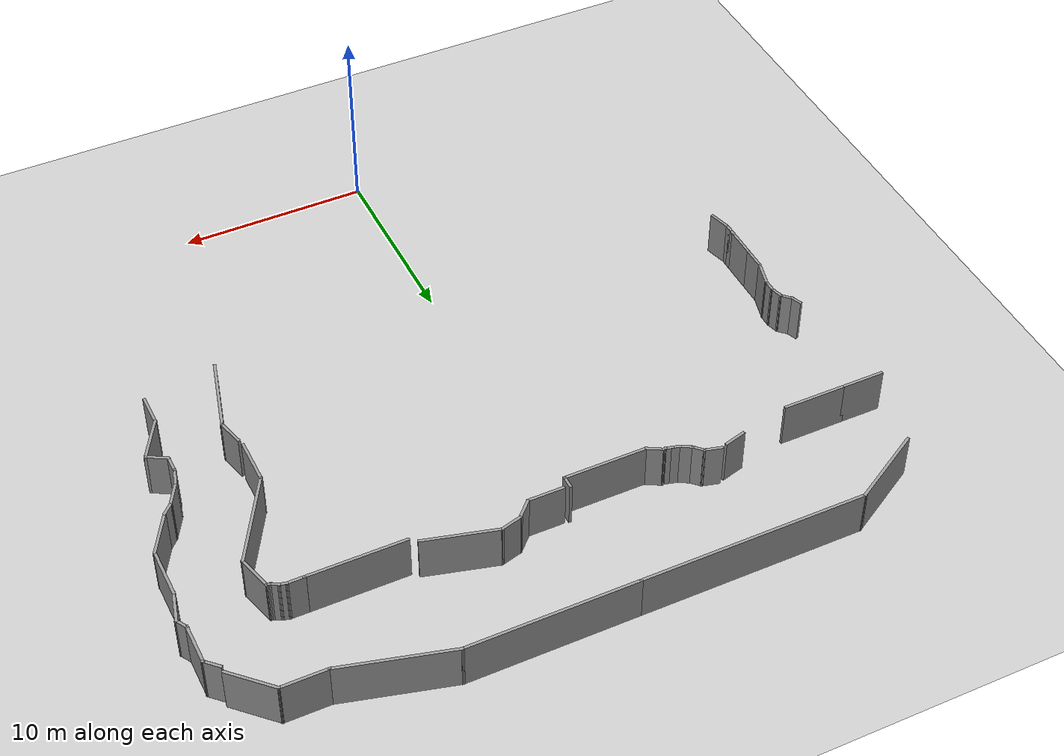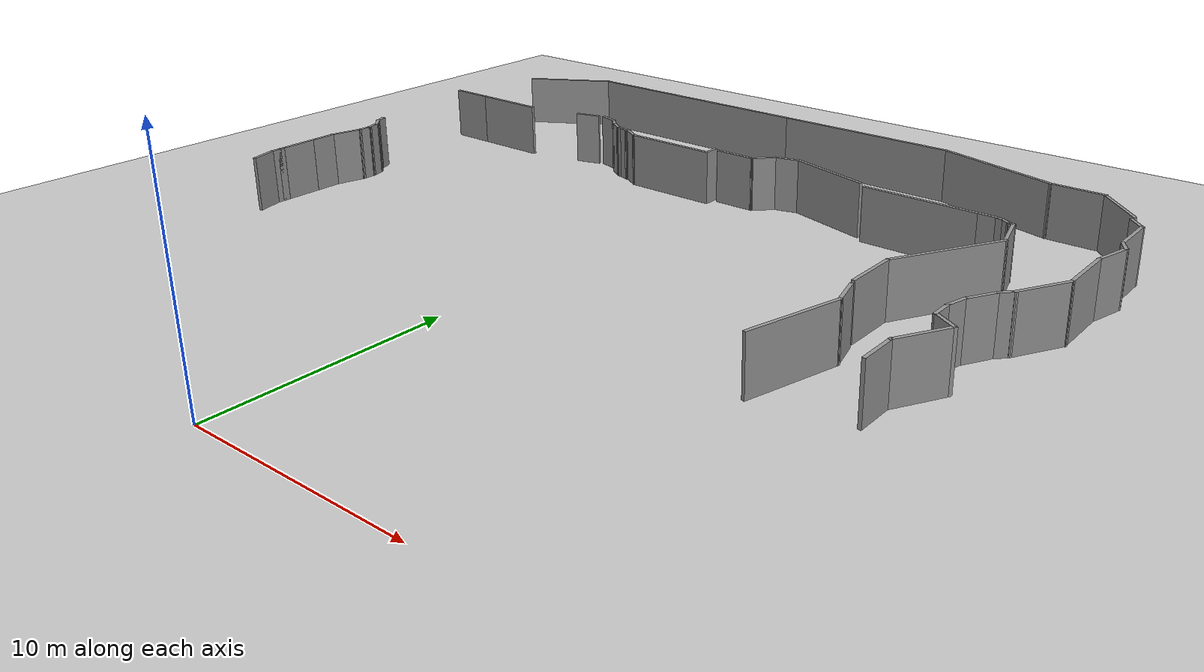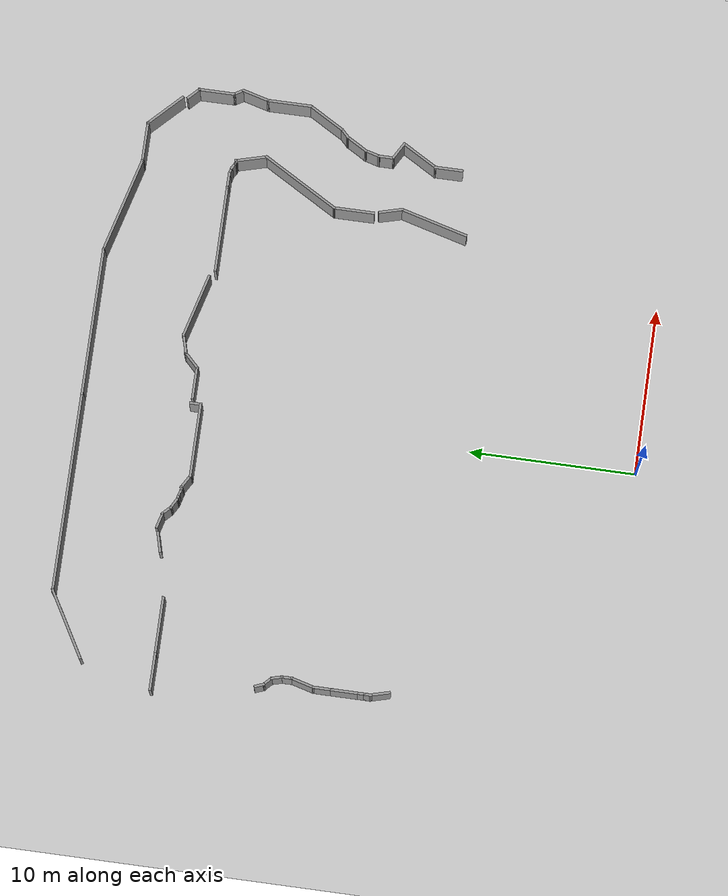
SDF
<sdf version="1.7">
 <world name="default">
  <model name="ground_plane">
   <static>1</static>
   <link name="link">
    <collision name="collision">
     <geometry><plane><normal>0 0 1</normal><size>100 100</size></plane></geometry>
     <surface><friction><ode><mu>100</mu><mu2>50</mu2></ode></friction></surface>
    </collision>
    <visual name="visual">
     <cast_shadows>0</cast_shadows>
     <geometry><plane><normal>0 0 1</normal><size>100 100</size></plane></geometry>
     <material>
      <script><uri>file://media/materials/scripts/gazebo.material</uri><name>Gazebo/Grey</name></script>
     </material>
    </visual>
   </link>
  </model>
  <model name="Untitled">
   <pose>-1.78886 14.7141 0 0 -0 0</pose>
   <link name="Wall_134">
    <collision name="Wall_134_Collision">
     <geometry><box><size>1.25 0.15 2.5</size></box></geometry>
     <pose>0 0 1.25 0 -0 0</pose>
    </collision>
    <visual name="Wall_134_Visual">
     <pose>0 0 1.25 0 -0 0</pose>
     <geometry><box><size>1.25 0.15 2.5</size></box></geometry>
     <material>
      <script><uri>file://media/materials/scripts/gazebo.material</uri><name>Gazebo/Grey</name></script>
      <ambient>1 1 1 1</ambient>
     </material>
     <meta><layer>0</layer></meta>
    </visual>
    <pose>-6.41412 12.7149 0 0 -0 -2.87979</pose>
   </link>
   <link name="Wall_150">
    <collision name="Wall_150_Collision">
     <geometry><box><size>1.75 0.15 2.5</size></box></geometry>
     <pose>0 0 1.25 0 -0 0</pose>
    </collision>
    <visual name="Wall_150_Visual">
     <pose>0 0 1.25 0 -0 0</pose>
     <geometry><box><size>1.75 0.15 2.5</size></box></geometry>
     <material>
      <script><uri>file://media/materials/scripts/gazebo.material</uri><name>Gazebo/Grey</name></script>
      <ambient>1 1 1 1</ambient>
     </material>
     <meta><layer>0</layer></meta>
    </visual>
    <pose>18.2425 -1.23109 0 0 -0 1.5708</pose>
   </link>
   <link name="Wall_151">
    <collision name="Wall_151_Collision">
     <geometry><box><size>2.5 0.15 2.5</size></box></geometry>
     <pose>0 0 1.25 0 -0 0</pose>
    </collision>
    <visual name="Wall_151_Visual">
     <pose>0 0 1.25 0 -0 0</pose>
     <geometry><box><size>2.5 0.15 2.5</size></box></geometry>
     <material>
      <script><uri>file://media/materials/scripts/gazebo.material</uri><name>Gazebo/Grey</name></script>
      <ambient>1 1 1 1</ambient>
     </material>
     <meta><layer>0</layer></meta>
    </visual>
    <pose>18.83 0.586485 0 0 -0 1.0472</pose>
   </link>
   <link name="Wall_152">
    <collision name="Wall_152_Collision">
     <geometry><box><size>1.25 0.15 2.5</size></box></geometry>
     <pose>0 0 1.25 0 -0 0</pose>
    </collision>
    <visual name="Wall_152_Visual">
     <pose>0 0 1.25 0 -0 0</pose>
     <geometry><box><size>1.25 0.15 2.5</size></box></geometry>
     <material>
      <script><uri>file://media/materials/scripts/gazebo.material</uri><name>Gazebo/Grey</name></script>
      <ambient>1 1 1 1</ambient>
     </material>
     <meta><layer>0</layer></meta>
    </visual>
    <pose>18.9412 1.87906 0 0 -0 2.61799</pose>
   </link>
   <link name="Wall_153">
    <collision name="Wall_153_Collision">
     <geometry><box><size>1 0.15 2.5</size></box></geometry>
     <pose>0 0 1.25 0 -0 0</pose>
    </collision>
    <visual name="Wall_153_Visual">
     <pose>0 0 1.25 0 -0 0</pose>
     <geometry><box><size>1 0.15 2.5</size></box></geometry>
     <material>
      <script><uri>file://media/materials/scripts/gazebo.material</uri><name>Gazebo/Grey</name></script>
      <ambient>1 1 1 1</ambient>
     </material>
     <meta><layer>0</layer></meta>
    </visual>
    <pose>18.4649 2.57906 0 0 -0 1.5708</pose>
   </link>
   <link name="Wall_154">
    <collision name="Wall_154_Collision">
     <geometry><box><size>1 0.15 2.5</size></box></geometry>
     <pose>0 0 1.25 0 -0 0</pose>
    </collision>
    <visual name="Wall_154_Visual">
     <pose>0 0 1.25 0 -0 0</pose>
     <geometry><box><size>1 0.15 2.5</size></box></geometry>
     <material>
      <script><uri>file://media/materials/scripts/gazebo.material</uri><name>Gazebo/Grey</name></script>
      <ambient>1 1 1 1</ambient>
     </material>
     <meta><layer>0</layer></meta>
    </visual>
    <pose>18.5749 3.41458 0 0 -0 1.309</pose>
   </link>
   <link name="Wall_155">
    <collision name="Wall_155_Collision">
     <geometry><box><size>1.5 0.15 2.5</size></box></geometry>
     <pose>0 0 1.25 0 -0 0</pose>
    </collision>
    <visual name="Wall_155_Visual">
     <pose>0 0 1.25 0 -0 0</pose>
     <geometry><box><size>1.5 0.15 2.5</size></box></geometry>
     <material>
      <script><uri>file://media/materials/scripts/gazebo.material</uri><name>Gazebo/Grey</name></script>
      <ambient>1 1 1 1</ambient>
     </material>
     <meta><layer>0</layer></meta>
    </visual>
    <pose>19.0224 4.40967 0 0 -0 1.0472</pose>
   </link>
   <link name="Wall_156">
    <collision name="Wall_156_Collision">
     <geometry><box><size>0.75 0.15 2.5</size></box></geometry>
     <pose>0 0 1.25 0 -0 0</pose>
    </collision>
    <visual name="Wall_156_Visual">
     <pose>0 0 1.25 0 -0 0</pose>
     <geometry><box><size>0.75 0.15 2.5</size></box></geometry>
     <material>
      <script><uri>file://media/materials/scripts/gazebo.material</uri><name>Gazebo/Grey</name></script>
      <ambient>1 1 1 1</ambient>
     </material>
     <meta><layer>0</layer></meta>
    </visual>
    <pose>19.572 5.20637 0 0 -0 0.785398</pose>
   </link>
   <link name="Wall_157">
    <collision name="Wall_157_Collision">
     <geometry><box><size>2.5 0.15 2.5</size></box></geometry>
     <pose>0 0 1.25 0 -0 0</pose>
    </collision>
    <visual name="Wall_157_Visual">
     <pose>0 0 1.25 0 -0 0</pose>
     <geometry><box><size>2.5 0.15 2.5</size></box></geometry>
     <material>
      <script><uri>file://media/materials/scripts/gazebo.material</uri><name>Gazebo/Grey</name></script>
      <ambient>1 1 1 1</ambient>
     </material>
     <meta><layer>0</layer></meta>
    </visual>
    <pose>20.3717 6.43608 0 0 -0 1.0472</pose>
   </link>
   <link name="Wall_158">
    <collision name="Wall_158_Collision">
     <geometry><box><size>2.75 0.15 2.5</size></box></geometry>
     <pose>0 0 1.25 0 -0 0</pose>
    </collision>
    <visual name="Wall_158_Visual">
     <pose>0 0 1.25 0 -0 0</pose>
     <geometry><box><size>2.75 0.15 2.5</size></box></geometry>
     <material>
      <script><uri>file://media/materials/scripts/gazebo.material</uri><name>Gazebo/Grey</name></script>
      <ambient>1 1 1 1</ambient>
     </material>
     <meta><layer>0</layer></meta>
    </visual>
    <pose>20.9592 8.75366 0 0 -0 1.5708</pose>
   </link>
   <link name="Wall_159">
    <collision name="Wall_159_Collision">
     <geometry><box><size>1.75 0.15 2.5</size></box></geometry>
     <pose>0 0 1.25 0 -0 0</pose>
    </collision>
    <visual name="Wall_159_Visual">
     <pose>0 0 1.25 0 -0 0</pose>
     <geometry><box><size>1.75 0.15 2.5</size></box></geometry>
     <material>
      <script><uri>file://media/materials/scripts/gazebo.material</uri><name>Gazebo/Grey</name></script>
      <ambient>1 1 1 1</ambient>
     </material>
     <meta><layer>0</layer></meta>
    </visual>
    <pose>21.1662 10.8264 0 0 -0 1.309</pose>
   </link>
   <link name="Wall_160">
    <collision name="Wall_160_Collision">
     <geometry><box><size>0.75 0.15 2.5</size></box></geometry>
     <pose>0 0 1.25 0 -0 0</pose>
    </collision>
    <visual name="Wall_160_Visual">
     <pose>0 0 1.25 0 -0 0</pose>
     <geometry><box><size>0.75 0.15 2.5</size></box></geometry>
     <material>
      <script><uri>file://media/materials/scripts/gazebo.material</uri><name>Gazebo/Grey</name></script>
      <ambient>1 1 1 1</ambient>
     </material>
     <meta><layer>0</layer></meta>
    </visual>
    <pose>21.2233 11.859 0 0 -0 2.0944</pose>
   </link>
   <link name="Wall_161">
    <collision name="Wall_161_Collision">
     <geometry><box><size>2.25 0.15 2.5</size></box></geometry>
     <pose>0 0 1.25 0 -0 0</pose>
    </collision>
    <visual name="Wall_161_Visual">
     <pose>0 0 1.25 0 -0 0</pose>
     <geometry><box><size>2.25 0.15 2.5</size></box></geometry>
     <material>
      <script><uri>file://media/materials/scripts/gazebo.material</uri><name>Gazebo/Grey</name></script>
      <ambient>1 1 1 1</ambient>
     </material>
     <meta><layer>0</layer></meta>
    </visual>
    <pose>21.0733 13.1688 0 0 -0 1.5708</pose>
   </link>
   <link name="Wall_162">
    <collision name="Wall_162_Collision">
     <geometry><box><size>1 0.15 2.5</size></box></geometry>
     <pose>0 0 1.25 0 -0 0</pose>
    </collision>
    <visual name="Wall_162_Visual">
     <pose>0 0 1.25 0 -0 0</pose>
     <geometry><box><size>1 0.15 2.5</size></box></geometry>
     <material>
      <script><uri>file://media/materials/scripts/gazebo.material</uri><name>Gazebo/Grey</name></script>
      <ambient>1 1 1 1</ambient>
     </material>
     <meta><layer>0</layer></meta>
    </visual>
    <pose>20.7727 14.5193 0 0 -0 2.35619</pose>
   </link>
   <link name="Wall_165">
    <collision name="Wall_165_Collision">
     <geometry><box><size>2.75 0.15 2.5</size></box></geometry>
     <pose>0 0 1.25 0 -0 0</pose>
    </collision>
    <visual name="Wall_165_Visual">
     <pose>0 0 1.25 0 -0 0</pose>
     <geometry><box><size>2.75 0.15 2.5</size></box></geometry>
     <material>
      <script><uri>file://media/materials/scripts/gazebo.material</uri><name>Gazebo/Grey</name></script>
      <ambient>1 1 1 1</ambient>
     </material>
     <meta><layer>0</layer></meta>
    </visual>
    <pose>19.5331 16.0665 0 0 -0 2.35619</pose>
   </link>
   <link name="Wall_166">
    <collision name="Wall_166_Collision">
     <geometry><box><size>2.5 0.15 2.5</size></box></geometry>
     <pose>0 0 1.25 0 -0 0</pose>
    </collision>
    <visual name="Wall_166_Visual">
     <pose>0 0 1.25 0 -0 0</pose>
     <geometry><box><size>2.5 0.15 2.5</size></box></geometry>
     <material>
      <script><uri>file://media/materials/scripts/gazebo.material</uri><name>Gazebo/Grey</name></script>
      <ambient>1 1 1 1</ambient>
     </material>
     <meta><layer>0</layer></meta>
    </visual>
    <pose>17.4388 16.9858 0 0 -0 3.14159</pose>
   </link>
   <link name="Wall_167">
    <collision name="Wall_167_Collision">
     <geometry><box><size>6 0.15 2.5</size></box></geometry>
     <pose>0 0 1.25 0 -0 0</pose>
    </collision>
    <visual name="Wall_167_Visual">
     <pose>0 0 1.25 0 -0 0</pose>
     <geometry><box><size>6 0.15 2.5</size></box></geometry>
     <material>
      <script><uri>file://media/materials/scripts/gazebo.material</uri><name>Gazebo/Grey</name></script>
      <ambient>1 1 1 1</ambient>
     </material>
     <meta><layer>0</layer></meta>
    </visual>
    <pose>13.4385 17.7428 0 0 -0 2.87979</pose>
   </link>
   <link name="Wall_168">
    <collision name="Wall_168_Collision">
     <geometry><box><size>9 0.15 2.5</size></box></geometry>
     <pose>0 0 1.25 0 -0 0</pose>
    </collision>
    <visual name="Wall_168_Visual">
     <pose>0 0 1.25 0 -0 0</pose>
     <geometry><box><size>9 0.15 2.5</size></box></geometry>
     <material>
      <script><uri>file://media/materials/scripts/gazebo.material</uri><name>Gazebo/Grey</name></script>
      <ambient>1 1 1 1</ambient>
     </material>
     <meta><layer>0</layer></meta>
    </visual>
    <pose>6.18816 18.4999 0 0 -0 3.14159</pose>
   </link>
   <link name="Wall_169">
    <collision name="Wall_169_Collision">
     <geometry><box><size>12 0.15 2.5</size></box></geometry>
     <pose>0 0 1.25 0 -0 0</pose>
    </collision>
    <visual name="Wall_169_Visual">
     <pose>0 0 1.25 0 -0 0</pose>
     <geometry><box><size>12 0.15 2.5</size></box></geometry>
     <material>
      <script><uri>file://media/materials/scripts/gazebo.material</uri><name>Gazebo/Grey</name></script>
      <ambient>1 1 1 1</ambient>
     </material>
     <meta><layer>0</layer></meta>
    </visual>
    <pose>-4.16184 18.4999 0 0 -0 3.14159</pose>
   </link>
   <link name="Wall_170">
    <collision name="Wall_170_Collision">
     <geometry><box><size>4.5 0.15 2.5</size></box></geometry>
     <pose>0 0 1.25 0 -0 0</pose>
    </collision>
    <visual name="Wall_170_Visual">
     <pose>0 0 1.25 0 -0 0</pose>
     <geometry><box><size>4.5 0.15 2.5</size></box></geometry>
     <material>
      <script><uri>file://media/materials/scripts/gazebo.material</uri><name>Gazebo/Grey</name></script>
      <ambient>1 1 1 1</ambient>
     </material>
     <meta><layer>0</layer></meta>
    </visual>
    <pose>-11.9704 17.4124 0 0 -0 -2.61799</pose>
   </link>
   <link name="Wall_228">
    <collision name="Wall_228_Collision">
     <geometry><box><size>1.25 0.15 2.5</size></box></geometry>
     <pose>0 0 1.25 0 -0 0</pose>
    </collision>
    <visual name="Wall_228_Visual">
     <pose>0 0 1.25 0 -0 0</pose>
     <geometry><box><size>1.25 0.15 2.5</size></box></geometry>
     <material>
      <script><uri>file://media/materials/scripts/gazebo.material</uri><name>Gazebo/Grey</name></script>
      <ambient>1 1 1 1</ambient>
     </material>
     <meta><layer>0</layer></meta>
    </visual>
    <pose>-13.5789 -1.40371 0 0 -0 1.8326</pose>
   </link>
   <link name="Wall_229">
    <collision name="Wall_229_Collision">
     <geometry><box><size>0.5 0.15 2.5</size></box></geometry>
     <pose>0 0 1.25 0 -0 0</pose>
    </collision>
    <visual name="Wall_229_Visual">
     <pose>0 0 1.25 0 -0 0</pose>
     <geometry><box><size>0.5 0.15 2.5</size></box></geometry>
     <material>
      <script><uri>file://media/materials/scripts/gazebo.material</uri><name>Gazebo/Grey</name></script>
      <ambient>1 1 1 1</ambient>
     </material>
     <meta><layer>0</layer></meta>
    </visual>
    <pose>-13.7212 -0.69745 0 0 -0 1.5708</pose>
   </link>
   <link name="Wall_230">
    <collision name="Wall_230_Collision">
     <geometry><box><size>0.5 0.15 2.5</size></box></geometry>
     <pose>0 0 1.25 0 -0 0</pose>
    </collision>
    <visual name="Wall_230_Visual">
     <pose>0 0 1.25 0 -0 0</pose>
     <geometry><box><size>0.5 0.15 2.5</size></box></geometry>
     <material>
      <script><uri>file://media/materials/scripts/gazebo.material</uri><name>Gazebo/Grey</name></script>
      <ambient>1 1 1 1</ambient>
     </material>
     <meta><layer>0</layer></meta>
    </visual>
    <pose>-13.7212 -0.347449 0 0 -0 1.5708</pose>
   </link>
   <link name="Wall_231">
    <collision name="Wall_231_Collision">
     <geometry><box><size>1.75 0.15 2.5</size></box></geometry>
     <pose>0 0 1.25 0 -0 0</pose>
    </collision>
    <visual name="Wall_231_Visual">
     <pose>0 0 1.25 0 -0 0</pose>
     <geometry><box><size>1.75 0.15 2.5</size></box></geometry>
     <material>
      <script><uri>file://media/materials/scripts/gazebo.material</uri><name>Gazebo/Grey</name></script>
      <ambient>1 1 1 1</ambient>
     </material>
     <meta><layer>0</layer></meta>
    </visual>
    <pose>-13.7212 0.62755 0 0 -0 1.5708</pose>
   </link>
   <link name="Wall_232">
    <collision name="Wall_232_Collision">
     <geometry><box><size>1.25 0.15 2.5</size></box></geometry>
     <pose>0 0 1.25 0 -0 0</pose>
    </collision>
    <visual name="Wall_232_Visual">
     <pose>0 0 1.25 0 -0 0</pose>
     <geometry><box><size>1.25 0.15 2.5</size></box></geometry>
     <material>
      <script><uri>file://media/materials/scripts/gazebo.material</uri><name>Gazebo/Grey</name></script>
      <ambient>1 1 1 1</ambient>
     </material>
     <meta><layer>0</layer></meta>
    </visual>
    <pose>-13.7212 1.97755 0 0 -0 1.5708</pose>
   </link>
   <link name="Wall_233">
    <collision name="Wall_233_Collision">
     <geometry><box><size>1.5 0.15 2.5</size></box></geometry>
     <pose>0 0 1.25 0 -0 0</pose>
    </collision>
    <visual name="Wall_233_Visual">
     <pose>0 0 1.25 0 -0 0</pose>
     <geometry><box><size>1.5 0.15 2.5</size></box></geometry>
     <material>
      <script><uri>file://media/materials/scripts/gazebo.material</uri><name>Gazebo/Grey</name></script>
      <ambient>1 1 1 1</ambient>
     </material>
     <meta><layer>0</layer></meta>
    </visual>
    <pose>-13.5465 3.17955 0 0 -0 1.309</pose>
   </link>
   <link name="Wall_234">
    <collision name="Wall_234_Collision">
     <geometry><box><size>0.75 0.15 2.5</size></box></geometry>
     <pose>0 0 1.25 0 -0 0</pose>
    </collision>
    <visual name="Wall_234_Visual">
     <pose>0 0 1.25 0 -0 0</pose>
     <geometry><box><size>0.75 0.15 2.5</size></box></geometry>
     <material>
      <script><uri>file://media/materials/scripts/gazebo.material</uri><name>Gazebo/Grey</name></script>
      <ambient>1 1 1 1</ambient>
     </material>
     <meta><layer>0</layer></meta>
    </visual>
    <pose>-13.3718 4.13155 0 0 -0 1.5708</pose>
   </link>
   <link name="Wall_235">
    <collision name="Wall_235_Collision">
     <geometry><box><size>0.75 0.15 2.5</size></box></geometry>
     <pose>0 0 1.25 0 -0 0</pose>
    </collision>
    <visual name="Wall_235_Visual">
     <pose>0 0 1.25 0 -0 0</pose>
     <geometry><box><size>0.75 0.15 2.5</size></box></geometry>
     <material>
      <script><uri>file://media/materials/scripts/gazebo.material</uri><name>Gazebo/Grey</name></script>
      <ambient>1 1 1 1</ambient>
     </material>
     <meta><layer>0</layer></meta>
    </visual>
    <pose>-13.4495 4.72133 0 0 -0 1.8326</pose>
   </link>
   <link name="Wall_236">
    <collision name="Wall_236_Collision">
     <geometry><box><size>0.75 0.15 2.5</size></box></geometry>
     <pose>0 0 1.25 0 -0 0</pose>
    </collision>
    <visual name="Wall_236_Visual">
     <pose>0 0 1.25 0 -0 0</pose>
     <geometry><box><size>0.75 0.15 2.5</size></box></geometry>
     <material>
      <script><uri>file://media/materials/scripts/gazebo.material</uri><name>Gazebo/Grey</name></script>
      <ambient>1 1 1 1</ambient>
     </material>
     <meta><layer>0</layer></meta>
    </visual>
    <pose>-13.7393 5.22324 0 0 -0 2.35619</pose>
   </link>
   <link name="Wall_246">
    <collision name="Wall_246_Collision">
     <geometry><box><size>2.25 0.15 2.5</size></box></geometry>
     <pose>0 0 1.25 0 -0 0</pose>
    </collision>
    <visual name="Wall_246_Visual">
     <pose>0 0 1.25 0 -0 0</pose>
     <geometry><box><size>2.25 0.15 2.5</size></box></geometry>
     <material>
      <script><uri>file://media/materials/scripts/gazebo.material</uri><name>Gazebo/Grey</name></script>
      <ambient>1 1 1 1</ambient>
     </material>
     <meta><layer>0</layer></meta>
    </visual>
    <pose>-14.0739 11.984 0 0 -0 0</pose>
   </link>
   <link name="Wall_247">
    <collision name="Wall_247_Collision">
     <geometry><box><size>3.5 0.15 2.5</size></box></geometry>
     <pose>0 0 1.25 0 -0 0</pose>
    </collision>
    <visual name="Wall_247_Visual">
     <pose>0 0 1.25 0 -0 0</pose>
     <geometry><box><size>3.5 0.15 2.5</size></box></geometry>
     <material>
      <script><uri>file://media/materials/scripts/gazebo.material</uri><name>Gazebo/Grey</name></script>
      <ambient>1 1 1 1</ambient>
     </material>
     <meta><layer>0</layer></meta>
    </visual>
    <pose>-11.3489 11.984 0 0 -0 0</pose>
   </link>
   <link name="Wall_249">
    <collision name="Wall_249_Collision">
     <geometry><box><size>0.654197 0.15 2.5</size></box></geometry>
     <pose>0 0 1.25 0 -0 0</pose>
    </collision>
    <visual name="Wall_249_Visual">
     <pose>0 0 1.25 0 -0 0</pose>
     <geometry><box><size>0.654197 0.15 2.5</size></box></geometry>
     <material>
      <script><uri>file://media/materials/scripts/gazebo.material</uri><name>Gazebo/Grey</name></script>
      <ambient>1 1 1 1</ambient>
     </material>
     <meta><layer>0</layer></meta>
    </visual>
    <pose>-14.0436 5.67001 0 0 -0 1.94513</pose>
   </link>
   <link name="Wall_56">
    <collision name="Wall_56_Collision">
     <geometry><box><size>4.25 0.15 2.5</size></box></geometry>
     <pose>0 0 1.25 0 -0 0</pose>
    </collision>
    <visual name="Wall_56_Visual">
     <pose>0 0 1.25 0 -0 0</pose>
     <geometry><box><size>4.25 0.15 2.5</size></box></geometry>
     <material>
      <script><uri>file://media/materials/scripts/gazebo.material</uri><name>Gazebo/Grey</name></script>
      <ambient>1 1 1 1</ambient>
     </material>
     <meta><layer>0</layer></meta>
    </visual>
    <pose>14.8805 -0.787457 0 0 -0 1.309</pose>
   </link>
   <link name="Wall_57">
    <collision name="Wall_57_Collision">
     <geometry><box><size>1.5 0.15 2.5</size></box></geometry>
     <pose>0 0 1.25 0 -0 0</pose>
    </collision>
    <visual name="Wall_57_Visual">
     <pose>0 0 1.25 0 -0 0</pose>
     <geometry><box><size>1.5 0.15 2.5</size></box></geometry>
     <material>
      <script><uri>file://media/materials/scripts/gazebo.material</uri><name>Gazebo/Grey</name></script>
      <ambient>1 1 1 1</ambient>
     </material>
     <meta><layer>0</layer></meta>
    </visual>
    <pose>15.2364 1.84469 0 0 -0 1.8326</pose>
   </link>
   <link name="Wall_60">
    <collision name="Wall_60_Collision">
     <geometry><box><size>2.5 0.15 2.5</size></box></geometry>
     <pose>0 0 1.25 0 -0 0</pose>
    </collision>
    <visual name="Wall_60_Visual">
     <pose>0 0 1.25 0 -0 0</pose>
     <geometry><box><size>2.5 0.15 2.5</size></box></geometry>
     <material>
      <script><uri>file://media/materials/scripts/gazebo.material</uri><name>Gazebo/Grey</name></script>
      <ambient>1 1 1 1</ambient>
     </material>
     <meta><layer>0</layer></meta>
    </visual>
    <pose>14.9621 4.05441 0 0 -0 1.5708</pose>
   </link>
   <link name="Wall_61">
    <collision name="Wall_61_Collision">
     <geometry><box><size>5.25 0.15 2.5</size></box></geometry>
     <pose>0 0 1.25 0 -0 0</pose>
    </collision>
    <visual name="Wall_61_Visual">
     <pose>0 0 1.25 0 -0 0</pose>
     <geometry><box><size>5.25 0.15 2.5</size></box></geometry>
     <material>
      <script><uri>file://media/materials/scripts/gazebo.material</uri><name>Gazebo/Grey</name></script>
      <ambient>1 1 1 1</ambient>
     </material>
     <meta><layer>0</layer></meta>
    </visual>
    <pose>16.2371 7.43778 0 0 -0 1.0472</pose>
   </link>
   <link name="Wall_62">
    <collision name="Wall_62_Collision">
     <geometry><box><size>2 0.15 2.5</size></box></geometry>
     <pose>0 0 1.25 0 -0 0</pose>
    </collision>
    <visual name="Wall_62_Visual">
     <pose>0 0 1.25 0 -0 0</pose>
     <geometry><box><size>2 0.15 2.5</size></box></geometry>
     <material>
      <script><uri>file://media/materials/scripts/gazebo.material</uri><name>Gazebo/Grey</name></script>
      <ambient>1 1 1 1</ambient>
     </material>
     <meta><layer>0</layer></meta>
    </visual>
    <pose>17.2727 10.5396 0 0 -0 1.8326</pose>
   </link>
   <link name="Wall_63">
    <collision name="Wall_63_Collision">
     <geometry><box><size>0.25 0.15 2.5</size></box></geometry>
     <pose>0 0 1.25 0 -0 0</pose>
    </collision>
    <visual name="Wall_63_Visual">
     <pose>0 0 1.25 0 -0 0</pose>
     <geometry><box><size>0.25 0.15 2.5</size></box></geometry>
     <material>
      <script><uri>file://media/materials/scripts/gazebo.material</uri><name>Gazebo/Grey</name></script>
      <ambient>1 1 1 1</ambient>
     </material>
     <meta><layer>0</layer></meta>
    </visual>
    <pose>16.9833 11.4331 0 0 -0 3.14159</pose>
   </link>
   <link name="Wall_64">
    <collision name="Wall_64_Collision">
     <geometry><box><size>0.25 0.15 2.5</size></box></geometry>
     <pose>0 0 1.25 0 -0 0</pose>
    </collision>
    <visual name="Wall_64_Visual">
     <pose>0 0 1.25 0 -0 0</pose>
     <geometry><box><size>0.25 0.15 2.5</size></box></geometry>
     <material>
      <script><uri>file://media/materials/scripts/gazebo.material</uri><name>Gazebo/Grey</name></script>
      <ambient>1 1 1 1</ambient>
     </material>
     <meta><layer>0</layer></meta>
    </visual>
    <pose>16.885 11.446 0 0 -0 2.87979</pose>
   </link>
   <link name="Wall_65">
    <collision name="Wall_65_Collision">
     <geometry><box><size>0.5 0.15 2.5</size></box></geometry>
     <pose>0 0 1.25 0 -0 0</pose>
    </collision>
    <visual name="Wall_65_Visual">
     <pose>0 0 1.25 0 -0 0</pose>
     <geometry><box><size>0.5 0.15 2.5</size></box></geometry>
     <material>
      <script><uri>file://media/materials/scripts/gazebo.material</uri><name>Gazebo/Grey</name></script>
      <ambient>1 1 1 1</ambient>
     </material>
     <meta><layer>0</layer></meta>
    </visual>
    <pose>16.6852 11.5465 0 0 -0 2.61799</pose>
   </link>
   <link name="Wall_66">
    <collision name="Wall_66_Collision">
     <geometry><box><size>0.5 0.15 2.5</size></box></geometry>
     <pose>0 0 1.25 0 -0 0</pose>
    </collision>
    <visual name="Wall_66_Visual">
     <pose>0 0 1.25 0 -0 0</pose>
     <geometry><box><size>0.5 0.15 2.5</size></box></geometry>
     <material>
      <script><uri>file://media/materials/scripts/gazebo.material</uri><name>Gazebo/Grey</name></script>
      <ambient>1 1 1 1</ambient>
     </material>
     <meta><layer>0</layer></meta>
    </visual>
    <pose>16.3646 11.6793 0 0 -0 2.87979</pose>
   </link>
   <link name="Wall_67">
    <collision name="Wall_67_Collision">
     <geometry><box><size>1 0.15 2.5</size></box></geometry>
     <pose>0 0 1.25 0 -0 0</pose>
    </collision>
    <visual name="Wall_67_Visual">
     <pose>0 0 1.25 0 -0 0</pose>
     <geometry><box><size>1 0.15 2.5</size></box></geometry>
     <material>
      <script><uri>file://media/materials/scripts/gazebo.material</uri><name>Gazebo/Grey</name></script>
      <ambient>1 1 1 1</ambient>
     </material>
     <meta><layer>0</layer></meta>
    </visual>
    <pose>15.7705 11.7246 0 0 -0 3.14159</pose>
   </link>
   <link name="Wall_68">
    <collision name="Wall_68_Collision">
     <geometry><box><size>5.25 0.15 2.5</size></box></geometry>
     <pose>0 0 1.25 0 -0 0</pose>
    </collision>
    <visual name="Wall_68_Visual">
     <pose>0 0 1.25 0 -0 0</pose>
     <geometry><box><size>5.25 0.15 2.5</size></box></geometry>
     <material>
      <script><uri>file://media/materials/scripts/gazebo.material</uri><name>Gazebo/Grey</name></script>
      <ambient>1 1 1 1</ambient>
     </material>
     <meta><layer>0</layer></meta>
    </visual>
    <pose>12.7955 11.7246 0 0 -0 3.14159</pose>
   </link>
   <link name="Wall_70">
    <collision name="Wall_70_Collision">
     <geometry><box><size>4 0.15 2.5</size></box></geometry>
     <pose>0 0 1.25 0 -0 0</pose>
    </collision>
    <visual name="Wall_70_Visual">
     <pose>0 0 1.25 0 -0 0</pose>
     <geometry><box><size>4 0.15 2.5</size></box></geometry>
     <material>
      <script><uri>file://media/materials/scripts/gazebo.material</uri><name>Gazebo/Grey</name></script>
      <ambient>1 1 1 1</ambient>
     </material>
     <meta><layer>0</layer></meta>
    </visual>
    <pose>7.95018 12.5377 0 0 -0 2.87979</pose>
   </link>
   <link name="Wall_71">
    <collision name="Wall_71_Collision">
     <geometry><box><size>1.25 0.15 2.5</size></box></geometry>
     <pose>0 0 1.25 0 -0 0</pose>
    </collision>
    <visual name="Wall_71_Visual">
     <pose>0 0 1.25 0 -0 0</pose>
     <geometry><box><size>1.25 0.15 2.5</size></box></geometry>
     <material>
      <script><uri>file://media/materials/scripts/gazebo.material</uri><name>Gazebo/Grey</name></script>
      <ambient>1 1 1 1</ambient>
     </material>
     <meta><layer>0</layer></meta>
    </visual>
    <pose>5.55951 12.8936 0 0 -0 -2.87979</pose>
   </link>
   <link name="Wall_72">
    <collision name="Wall_72_Collision">
     <geometry><box><size>1.25 0.15 2.5</size></box></geometry>
     <pose>0 0 1.25 0 -0 0</pose>
    </collision>
    <visual name="Wall_72_Visual">
     <pose>0 0 1.25 0 -0 0</pose>
     <geometry><box><size>1.25 0.15 2.5</size></box></geometry>
     <material>
      <script><uri>file://media/materials/scripts/gazebo.material</uri><name>Gazebo/Grey</name></script>
      <ambient>1 1 1 1</ambient>
     </material>
     <meta><layer>0</layer></meta>
    </visual>
    <pose>4.63934 12.3623 0 0 -0 -2.35619</pose>
   </link>
   <link name="Wall_73">
    <collision name="Wall_73_Collision">
     <geometry><box><size>2 0.15 2.5</size></box></geometry>
     <pose>0 0 1.25 0 -0 0</pose>
    </collision>
    <visual name="Wall_73_Visual">
     <pose>0 0 1.25 0 -0 0</pose>
     <geometry><box><size>2 0.15 2.5</size></box></geometry>
     <material>
      <script><uri>file://media/materials/scripts/gazebo.material</uri><name>Gazebo/Grey</name></script>
      <ambient>1 1 1 1</ambient>
     </material>
     <meta><layer>0</layer></meta>
    </visual>
    <pose>3.32544 11.9734 0 0 -0 3.14159</pose>
   </link>
   <link name="Wall_76">
    <collision name="Wall_76_Collision">
     <geometry><box><size>0.75 0.15 2.5</size></box></geometry>
     <pose>0 0 1.25 0 -0 0</pose>
    </collision>
    <visual name="Wall_76_Visual">
     <pose>0 0 1.25 0 -0 0</pose>
     <geometry><box><size>0.75 0.15 2.5</size></box></geometry>
     <material>
      <script><uri>file://media/materials/scripts/gazebo.material</uri><name>Gazebo/Grey</name></script>
      <ambient>1 1 1 1</ambient>
     </material>
     <meta><layer>0</layer></meta>
    </visual>
    <pose>2.08079 11.7395 0 0 -0 -1.5708</pose>
   </link>
   <link name="Wall_77">
    <collision name="Wall_77_Collision">
     <geometry><box><size>4.5 0.15 2.5</size></box></geometry>
     <pose>0 0 1.25 0 -0 0</pose>
    </collision>
    <visual name="Wall_77_Visual">
     <pose>0 0 1.25 0 -0 0</pose>
     <geometry><box><size>4.5 0.15 2.5</size></box></geometry>
     <material>
      <script><uri>file://media/materials/scripts/gazebo.material</uri><name>Gazebo/Grey</name></script>
      <ambient>1 1 1 1</ambient>
     </material>
     <meta><layer>0</layer></meta>
    </visual>
    <pose>-0.094213 11.4395 0 0 -0 3.14159</pose>
   </link>
   <link name="Wall_78">
    <collision name="Wall_78_Collision">
     <geometry><box><size>1 0.15 2.5</size></box></geometry>
     <pose>0 0 1.25 0 -0 0</pose>
    </collision>
    <visual name="Wall_78_Visual">
     <pose>0 0 1.25 0 -0 0</pose>
     <geometry><box><size>1 0.15 2.5</size></box></geometry>
     <material>
      <script><uri>file://media/materials/scripts/gazebo.material</uri><name>Gazebo/Grey</name></script>
      <ambient>1 1 1 1</ambient>
     </material>
     <meta><layer>0</layer></meta>
    </visual>
    <pose>-2.63727 11.652 0 0 -0 2.61799</pose>
   </link>
   <link name="Wall_79">
    <collision name="Wall_79_Collision">
     <geometry><box><size>0.25 0.15 2.5</size></box></geometry>
     <pose>0 0 1.25 0 -0 0</pose>
    </collision>
    <visual name="Wall_79_Visual">
     <pose>0 0 1.25 0 -0 0</pose>
     <geometry><box><size>0.25 0.15 2.5</size></box></geometry>
     <material>
      <script><uri>file://media/materials/scripts/gazebo.material</uri><name>Gazebo/Grey</name></script>
      <ambient>1 1 1 1</ambient>
     </material>
     <meta><layer>0</layer></meta>
    </visual>
    <pose>-3.05363 11.8515 0 0 -0 -2.87979</pose>
   </link>
   <link name="Wall_80">
    <collision name="Wall_80_Collision">
     <geometry><box><size>0.5 0.15 2.5</size></box></geometry>
     <pose>0 0 1.25 0 -0 0</pose>
    </collision>
    <visual name="Wall_80_Visual">
     <pose>0 0 1.25 0 -0 0</pose>
     <geometry><box><size>0.5 0.15 2.5</size></box></geometry>
     <material>
      <script><uri>file://media/materials/scripts/gazebo.material</uri><name>Gazebo/Grey</name></script>
      <ambient>1 1 1 1</ambient>
     </material>
     <meta><layer>0</layer></meta>
    </visual>
    <pose>-3.27096 11.8839 0 0 -0 2.87979</pose>
   </link>
   <link name="Wall_81">
    <collision name="Wall_81_Collision">
     <geometry><box><size>0.5 0.15 2.5</size></box></geometry>
     <pose>0 0 1.25 0 -0 0</pose>
    </collision>
    <visual name="Wall_81_Visual">
     <pose>0 0 1.25 0 -0 0</pose>
     <geometry><box><size>0.5 0.15 2.5</size></box></geometry>
     <material>
      <script><uri>file://media/materials/scripts/gazebo.material</uri><name>Gazebo/Grey</name></script>
      <ambient>1 1 1 1</ambient>
     </material>
     <meta><layer>0</layer></meta>
    </visual>
    <pose>-3.60904 11.9745 0 0 -0 2.87979</pose>
   </link>
   <link name="Wall_82">
    <collision name="Wall_82_Collision">
     <geometry><box><size>0.75 0.15 2.5</size></box></geometry>
     <pose>0 0 1.25 0 -0 0</pose>
    </collision>
    <visual name="Wall_82_Visual">
     <pose>0 0 1.25 0 -0 0</pose>
     <geometry><box><size>0.75 0.15 2.5</size></box></geometry>
     <material>
      <script><uri>file://media/materials/scripts/gazebo.material</uri><name>Gazebo/Grey</name></script>
      <ambient>1 1 1 1</ambient>
     </material>
     <meta><layer>0</layer></meta>
    </visual>
    <pose>-4.03788 12.1698 0 0 -0 2.61799</pose>
   </link>
   <link name="Wall_83">
    <collision name="Wall_83_Collision">
     <geometry><box><size>0.75 0.15 2.5</size></box></geometry>
     <pose>0 0 1.25 0 -0 0</pose>
    </collision>
    <visual name="Wall_83_Visual">
     <pose>0 0 1.25 0 -0 0</pose>
     <geometry><box><size>0.75 0.15 2.5</size></box></geometry>
     <material>
      <script><uri>file://media/materials/scripts/gazebo.material</uri><name>Gazebo/Grey</name></script>
      <ambient>1 1 1 1</ambient>
     </material>
     <meta><layer>0</layer></meta>
    </visual>
    <pose>-4.50982 12.5319 0 0 -0 2.35619</pose>
   </link>
   <link name="Wall_84">
    <collision name="Wall_84_Collision">
     <geometry><box><size>1 0.15 2.5</size></box></geometry>
     <pose>0 0 1.25 0 -0 0</pose>
    </collision>
    <visual name="Wall_84_Visual">
     <pose>0 0 1.25 0 -0 0</pose>
     <geometry><box><size>1 0.15 2.5</size></box></geometry>
     <material>
      <script><uri>file://media/materials/scripts/gazebo.material</uri><name>Gazebo/Grey</name></script>
      <ambient>1 1 1 1</ambient>
     </material>
     <meta><layer>0</layer></meta>
    </visual>
    <pose>-5.13247 12.854 0 0 -0 2.87979</pose>
   </link>
   <static>1</static>
  </model>
 </world>
</sdf>
